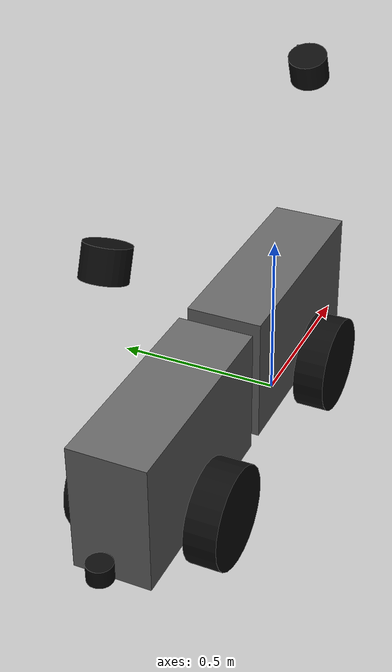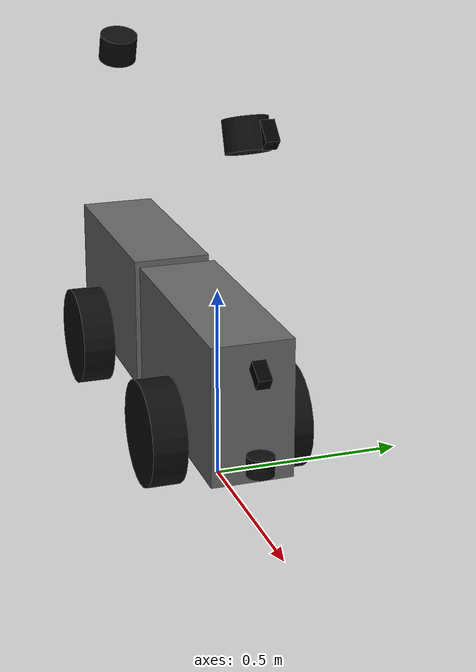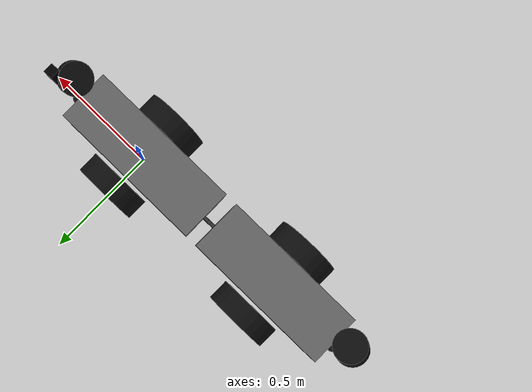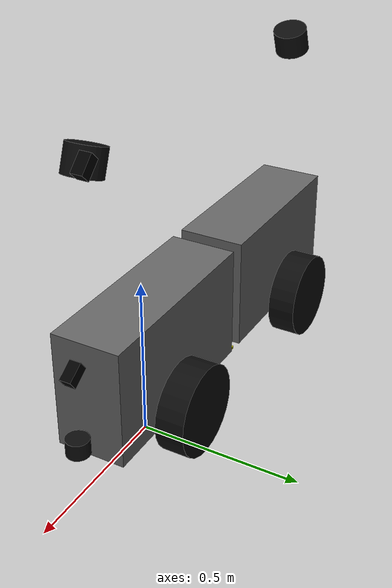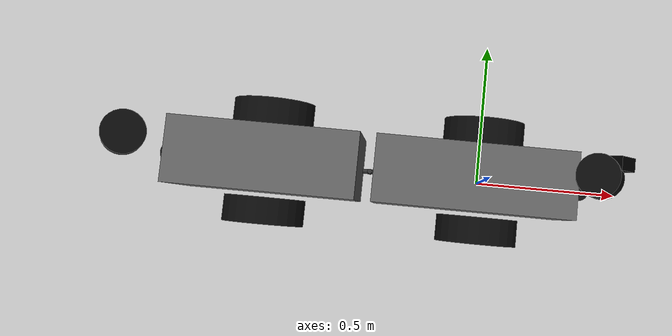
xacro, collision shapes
<?xml version="1.0" encoding="UTF-8"?>
<robot xmlns:xacro="http://www.ros.org/wiki/xacro" name="Floribot">

  <xacro:property name="height_wagon" value="0.363" />
  <xacro:property name="width_wagon" value="0.213" />
  <xacro:property name="length_wagon_front" value="0.635" />
  <xacro:property name="length_wagon_rear" value="0.605" />

  <xacro:property name="ghost_size" value="0.01" />
  <xacro:property name="base_2_front_wagon" value="0.04" />
  <xacro:property name="axesRear_2_rear_wagon" value="0.025" />

  <xacro:property name="wheel_radius" value="0.140" />
  <xacro:property name="wheel_thickness" value="0.09" />
  <xacro:property name="x_joint_wheel_front" value="0" />
  <xacro:property name="y_joint_wheel_front" value="0.167" />
  <xacro:property name="x_joint_wheel_back" value="0" />
  <xacro:property name="y_joint_wheel_back" value="0.167" />

  <xacro:property name="radius" value="0.008" />
  <xacro:property name="vertical_length" value="0.06" />
  <xacro:property name="horizontal_length" value="0.055" />
  <xacro:property name="wheel_joint_2_mid_joint" value="0.383" />

  <xacro:property name="sensor_z" value="0.03" />
  <xacro:property name="front_sensor_x" value="0.3315" />
  <xacro:property name="rear_sensor_x" value="-0.3315" />
  <xacro:property name="camera_z" value="0.263" />
  <xacro:property name="camera_angle" value="0.6" />
  <xacro:property name="pi" value="3.141592653589793" />

  <xacro:property name="camera_x_rear" value="0.275" />
  <xacro:property name="camera_y_rear" value="0.035" />
  <xacro:property name="camera_z_rear" value="0.825" />
  <xacro:property name="camera_angle_rear" value="0.785398" />

  <xacro:property name="imu_offset_x" value="0.0" />
  <xacro:property name="imu_offset_y" value="0.0" />
  <xacro:property name="imu_offset_z" value="0.27" />

  <xacro:property name="robosense_offset_x" value="0.225" />
  <xacro:property name="robosense_offset_y" value="0.0" />
  <xacro:property name="robosense_offset_z" value="0.815" />
  <xacro:property name="robosense_roll" value="${pi}" />
  <xacro:property name="robosense_pitch" value="-0.3490658503989" />
  <xacro:property name="robosense_yaw" value="0.0" />

  <xacro:property name="robosense_offset_rear_x" value="-0.225" />
  <xacro:property name="robosense_offset_rear_y" value="0.0" />
  <xacro:property name="robosense_offset_rear_z" value="0.815" />
  <xacro:property name="robosense_rear_roll" value="${pi}" />
  <xacro:property name="robosense_rear_pitch" value="-0.3490658503989" />
  <xacro:property name="robosense_rear_yaw" value="${pi}" />

  <xacro:property name="gps_offset_x" value="${imu_offset_x}" />
  <xacro:property name="gps_offset_y" value="${imu_offset_y}" />
  <xacro:property name="gps_offset_z" value="${imu_offset_z + 0.02}" />

  <xacro:property name="pan_tilt_offset_x" value="-0.23" />
  <xacro:property name="pan_tilt_offset_y" value="-0.03" />
  <xacro:property name="pan_tilt_offset_z" value="0.0" />

  <link name="base_footprint"/>

  <link name="base_link">
    <visual>
      <origin xyz="0 0 ${ghost_size}" rpy="0 0 0"/>
      <geometry>
        <box size="${ghost_size} ${ghost_size} ${ghost_size}"/>
      </geometry>
      <material name="base_mat">
        <color rgba="0.0 0.8 0.8 1.0"/>
      </material>
    </visual>
  </link>

  <joint name="base_footprint_joint" type="fixed">
    <parent link="base_footprint"/>
    <child link="base_link"/>
    <origin xyz="0 0 ${wheel_radius}" rpy="0 0 0"/>
  </joint>

  <link name="axesFront"/>

  <joint name="base_link_2_axesFront" type="fixed">
    <parent link="base_link"/>
    <child link="axesFront"/>
    <origin xyz="0 0 0"/>
  </joint>

  <joint name="j_base_2_front_wagon" type="fixed">
    <parent link="base_link"/>
    <child link="front_wagon"/>
    <origin xyz="${-base_2_front_wagon} 0 0"/>
  </joint>

  <link name="front_wagon">
    <visual>
      <origin xyz="-${length_wagon_front/2+0.0255} 0 -${wheel_radius}" rpy="0 0 0"/>
      <geometry>
        <mesh filename="file:///ws/src/floribot_gz_description/meshes/Vorderwagen.stl" scale="0.001 0.001 0.001"/>
      </geometry>
      <material name="front_wagon_mat">
        <color rgba="0.4 0.4 0.4 1.0"/>
      </material>
    </visual>
    <collision>
      <origin xyz="0 0 ${wheel_radius}" rpy="0 0 0"/>
      <geometry>
        <box size="${length_wagon_front} ${width_wagon} ${height_wagon}"/>
      </geometry>
    </collision>
    <inertial>
      <origin xyz="0 0 ${wheel_radius}" rpy="0 0 0"/>
      <mass value="31"/>
      <inertia ixx="0.3853" ixy="0.0001197" ixz="-0.0128" iyy="1.0" iyz="0.0000149" izz="0.8678"/>
    </inertial>
  </link>

  <link name="jointFront">
    <visual>
      <geometry>
        <cylinder length="${vertical_length}" radius="${radius}"/>
      </geometry>
      <material name="joint_mat">
        <color rgba="0.2 0.2 0.2 1.0"/>
      </material>
    </visual>
    <collision>
      <geometry>
        <cylinder length="${vertical_length}" radius="${radius}"/>
      </geometry>
    </collision>
    <inertial>
      <mass value="0.01"/>
      <inertia ixx="0.000004" ixy="0.0" ixz="0.0" iyy="0.000004" iyz="0.0" izz="0.000004"/>
    </inertial>
  </link>

  <joint name="body_angle_roll" type="fixed">
    <axis xyz="1 0 0"/>
    <limit effort="1.0" lower="-1.57" upper="1.57" velocity="0.5"/>
    <parent link="axesFront"/>
    <child link="jointFront"/>
    <origin xyz="${-wheel_joint_2_mid_joint} 0 0"/>
  </joint>

  <link name="jointRear">
    <visual>
      <origin xyz="0 0 0" rpy="0 1.57 0"/>
      <geometry>
        <cylinder length="${horizontal_length}" radius="${radius}"/>
      </geometry>
      <material name="joint_rear_mat">
        <color rgba="0.2 0.2 0.2 1.0"/>
      </material>
    </visual>
    <collision>
      <origin xyz="0 0 0" rpy="0 1.57 0"/>
      <geometry>
        <cylinder length="${horizontal_length}" radius="${radius}"/>
      </geometry>
    </collision>
    <inertial>
      <mass value="0.01"/>
      <inertia ixx="0.000004" ixy="0.0" ixz="0.0" iyy="0.000004" iyz="0.0" izz="0.000004"/>
    </inertial>
  </link>

  <joint name="body_angle" type="revolute">
    <axis xyz="0 0 1"/>
    <limit effort="1.0" lower="-1.57" upper="1.57" velocity="0.5"/>
    <parent link="jointFront"/>
    <child link="jointRear"/>
    <origin xyz="0 0 0"/>
  </joint>

  <link name="axesRear">
    <visual>
      <origin xyz="0 0 ${wheel_radius}" rpy="0 0 0"/>
      <geometry>
        <box size="${ghost_size} ${ghost_size} ${ghost_size}"/>
      </geometry>
      <material name="rear_axis_mat">
        <color rgba="0 0 0.8 1.0"/>
      </material>
    </visual>
    <collision>
      <origin xyz="0 0 ${wheel_radius}" rpy="0 0 0"/>
      <geometry>
        <box size="${ghost_size} ${ghost_size} ${ghost_size}"/>
      </geometry>
    </collision>
    <inertial>
      <origin xyz="0 0 ${wheel_radius}" rpy="0 0 0"/>
      <mass value="0.001"/>
      <inertia ixx="1.369982" ixy="0.0" ixz="0.0" iyy="0.487502" iyz="0.0" izz="1.132200"/>
    </inertial>
  </link>

  <joint name="j_jointRear_rear_wagon" type="fixed">
    <parent link="jointRear"/>
    <child link="axesRear"/>
    <origin xyz="${-wheel_joint_2_mid_joint + vertical_length/2} 0 0"/>
  </joint>

  <link name="axesRear_footprint">
    <visual>
      <origin xyz="0 0 0" rpy="0 0 0"/>
      <geometry>
        <box size="${ghost_size} ${ghost_size} ${ghost_size}"/>
      </geometry>
      <material name="axes_rear_footprint_mat">
        <color rgba="0.8 0 0.8 1.0"/>
      </material>
    </visual>
    <collision>
      <origin xyz="0 0 0" rpy="0 0 0"/>
      <geometry>
        <box size="${ghost_size} ${ghost_size} ${ghost_size}"/>
      </geometry>
    </collision>
    <inertial>
      <origin xyz="0 0 0" rpy="0 0 0"/>
      <mass value="0.001"/>
      <inertia ixx="1.369982" ixy="0.0" ixz="0.0" iyy="0.487502" iyz="0.0" izz="1.132200"/>
    </inertial>
  </link>

  <joint name="j_axesRear_2_axesRear_footprint" type="fixed">
    <parent link="axesRear"/>
    <child link="axesRear_footprint"/>
    <origin xyz="0.0 0.0 -${wheel_radius}" rpy="0 0 ${pi}"/>
  </joint>

  <link name="pan_tilt_link_footprint">
    <visual>
      <origin xyz="0 0 0" rpy="0 0 0"/>
      <geometry>
        <box size="${ghost_size} ${ghost_size} ${ghost_size}"/>
      </geometry>
      <material name="pan_tilt_footprint_mat">
        <color rgba="0.8 0.8 0 1.0"/>
      </material>
    </visual>
    <collision>
      <origin xyz="0 0 0" rpy="0 0 0"/>
      <geometry>
        <box size="${ghost_size} ${ghost_size} ${ghost_size}"/>
      </geometry>
    </collision>
    <inertial>
      <origin xyz="0 0 0" rpy="0 0 0"/>
      <mass value="0.001"/>
      <inertia ixx="0.000001" ixy="0.0" ixz="0.0" iyy="0.000001" iyz="0.0" izz="0.000001"/>
    </inertial>
  </link>

  <joint name="pan_tilt_link_footprint_joint" type="fixed">
    <parent link="axesRear_footprint"/>
    <child link="pan_tilt_link_footprint"/>
    <origin xyz="${pan_tilt_offset_x} ${pan_tilt_offset_y} ${pan_tilt_offset_z}" rpy="0 0 ${pi}"/>
  </joint>

  <joint name="j_axesRear_2_rear_wagon" type="fixed">
    <parent link="axesRear"/>
    <child link="rear_wagon"/>
    <origin xyz="${axesRear_2_rear_wagon} 0 0"/>
  </joint>

  <link name="rear_wagon">
    <visual>
      <origin xyz="${length_wagon_rear/2+0.056} 0 -${wheel_radius}" rpy="0 0 0"/>
      <geometry>
        <mesh filename="file:///ws/src/floribot_gz_description/meshes/Hinterwagen.stl" scale="0.001 0.001 0.001"/>
      </geometry>
      <material name="rear_wagon_mat">
        <color rgba="0.4 0.4 0.4 1.0"/>
      </material>
    </visual>
    <collision>
      <origin xyz="0 0 ${wheel_radius}" rpy="0 0 0"/>
      <geometry>
        <box size="${length_wagon_rear} ${width_wagon} ${height_wagon}"/>
      </geometry>
    </collision>
    <inertial>
      <origin xyz="0 0 ${wheel_radius}" rpy="0 0 0"/>
      <mass value="33"/>
      <inertia ixx="0.4137" ixy="0.00027" ixz="0.007359" iyy="1.047" iyz="0.0001775" izz="0.9021"/>
    </inertial>
  </link>

  <link name="frontLeft">
    <visual>
      <origin xyz="0 -${wheel_thickness/2-0.0095} 0" rpy="1.57 0 0"/>
      <geometry>
        <mesh filename="file:///ws/src/floribot_gz_description/meshes/Reifen.stl" scale="0.001 0.001 0.001"/>
      </geometry>
      <material name="wheel_mat">
        <color rgba="0.05 0.05 0.05 1.0"/>
      </material>
    </visual>
    <collision>
      <origin xyz="0 0 0" rpy="1.57 0 0"/>
      <geometry>
        <cylinder length="${wheel_thickness}" radius="${wheel_radius}"/>
      </geometry>
    </collision>
    <inertial>
      <mass value="2.4"/>
      <inertia ixx="0.014" ixy="0.0" ixz="0.0" iyy="0.026" iyz="0.0" izz="0.014"/>
    </inertial>
  </link>

  <joint name="joint_frontLeft" type="continuous">
    <parent link="axesFront"/>
    <child link="frontLeft"/>
    <axis xyz="0 1 0"/>
    <origin xyz="${x_joint_wheel_front} ${y_joint_wheel_front} 0"/>
  </joint>

  <link name="frontRight">
    <visual>
      <origin xyz="0 ${wheel_thickness/2-0.0095} 0" rpy="1.57 0 0"/>
      <geometry>
        <mesh filename="file:///ws/src/floribot_gz_description/meshes/Reifen.stl" scale="0.001 0.001 0.001"/>
      </geometry>
      <material name="wheel_mat">
        <color rgba="0.05 0.05 0.05 1.0"/>
      </material>
    </visual>
    <collision>
      <origin xyz="0 0 0" rpy="1.57 0 0"/>
      <geometry>
        <cylinder length="${wheel_thickness}" radius="${wheel_radius}"/>
      </geometry>
    </collision>
    <inertial>
      <mass value="2.4"/>
      <inertia ixx="0.014" ixy="0.0" ixz="0.0" iyy="0.026" iyz="0.0" izz="0.014"/>
    </inertial>
  </link>

  <joint name="joint_frontRight" type="continuous">
    <parent link="axesFront"/>
    <child link="frontRight"/>
    <axis xyz="0 1 0"/>
    <origin xyz="${x_joint_wheel_front} -${y_joint_wheel_front} 0"/>
  </joint>

  <link name="rearLeft">
    <visual>
      <origin xyz="0 -${wheel_thickness/2-0.0095} 0" rpy="1.57 0 0"/>
      <geometry>
        <mesh filename="file:///ws/src/floribot_gz_description/meshes/Reifen.stl" scale="0.001 0.001 0.001"/>
      </geometry>
      <material name="wheel_mat">
        <color rgba="0.05 0.05 0.05 1.0"/>
      </material>
    </visual>
    <collision>
      <origin xyz="0 0 0" rpy="1.57 0 0"/>
      <geometry>
        <cylinder length="${wheel_thickness}" radius="${wheel_radius}"/>
      </geometry>
    </collision>
    <inertial>
      <mass value="2.4"/>
      <inertia ixx="0.014" ixy="0.0" ixz="0.0" iyy="0.026" iyz="0.0" izz="0.014"/>
    </inertial>
  </link>

  <joint name="joint_rearLeft" type="continuous">
    <parent link="axesRear"/>
    <child link="rearLeft"/>
    <axis xyz="0 1 0"/>
    <origin xyz="${x_joint_wheel_back} ${y_joint_wheel_back} 0"/>
  </joint>

  <link name="rearRight">
    <visual>
      <origin xyz="0 ${wheel_thickness/2-0.0095} 0" rpy="1.57 0 0"/>
      <geometry>
        <mesh filename="file:///ws/src/floribot_gz_description/meshes/Reifen.stl" scale="0.001 0.001 0.001"/>
      </geometry>
      <material name="wheel_mat">
        <color rgba="0.05 0.05 0.05 1.0"/>
      </material>
    </visual>
    <collision>
      <origin xyz="0 0 0" rpy="1.57 0 0"/>
      <geometry>
        <cylinder length="${wheel_thickness}" radius="${wheel_radius}"/>
      </geometry>
    </collision>
    <inertial>
      <mass value="2.4"/>
      <inertia ixx="0.014" ixy="0.0" ixz="0.0" iyy="0.026" iyz="0.0" izz="0.014"/>
    </inertial>
  </link>

  <joint name="joint_rearRight" type="continuous">
    <parent link="axesRear"/>
    <child link="rearRight"/>
    <axis xyz="0 1 0"/>
    <origin xyz="${x_joint_wheel_back} -${y_joint_wheel_back} 0"/>
  </joint>

  <link name="sick_front_link">
    <visual>
      <origin xyz="0 0 0" rpy="0 0 0"/>
      <geometry>
        <cylinder length="0.05" radius="0.035"/>
      </geometry>
      <material name="front_laser_mat">
        <color rgba="0.05 0.05 0.05 1.0"/>
      </material>
    </visual>
    <collision>
      <origin xyz="0 0 0" rpy="0 0 0"/>
      <geometry>
        <cylinder length="0.05" radius="0.035"/>
      </geometry>
    </collision>
    <inertial>
      <mass value="0.2"/>
      <inertia ixx="0.0001" ixy="0.0" ixz="0.0" iyy="0.0001" iyz="0.0" izz="0.0001"/>
    </inertial>
  </link>

  <joint name="front_laser_joint" type="fixed">
    <parent link="axesFront"/>
    <child link="sick_front_link"/>
    <origin xyz="${front_sensor_x} 0 ${sensor_z}" rpy="${pi} 0 0"/>
  </joint>

  <link name="sick_rear_link">
    <visual>
      <origin xyz="0 0 0" rpy="0 0 0"/>
      <geometry>
        <cylinder length="0.05" radius="0.035"/>
      </geometry>
      <material name="rear_laser_mat">
        <color rgba="0.05 0.05 0.05 1.0"/>
      </material>
    </visual>
    <collision>
      <origin xyz="0 0 0" rpy="0 0 0"/>
      <geometry>
        <cylinder length="0.05" radius="0.035"/>
      </geometry>
    </collision>
    <inertial>
      <mass value="0.2"/>
      <inertia ixx="0.0001" ixy="0.0" ixz="0.0" iyy="0.0001" iyz="0.0" izz="0.0001"/>
    </inertial>
  </link>

  <joint name="rear_laser_joint" type="fixed">
    <parent link="axesRear"/>
    <child link="sick_rear_link"/>
    <origin xyz="${rear_sensor_x} 0 ${sensor_z}" rpy="${pi} 0 ${pi}"/>
  </joint>

  <link name="realsense_front_link">
    <visual>
      <origin xyz="0 0 0" rpy="0 0 0"/>
      <geometry>
        <box size="0.06 0.035 0.035"/>
      </geometry>
      <material name="front_camera_mat">
        <color rgba="0.0 0.0 0.0 1.0"/>
      </material>
    </visual>
    <collision>
      <origin xyz="0 0 0" rpy="0 0 0"/>
      <geometry>
        <box size="0.06 0.035 0.035"/>
      </geometry>
    </collision>
    <inertial>
      <mass value="0.1"/>
      <inertia ixx="0.00005" ixy="0.0" ixz="0.0" iyy="0.00005" iyz="0.0" izz="0.00005"/>
    </inertial>
  </link>

  <joint name="front_camera_joint" type="fixed">
    <parent link="base_link"/>
    <child link="realsense_front_link"/>
    <origin xyz="${front_sensor_x} 0 ${camera_z}" rpy="0 ${camera_angle} 0"/>
  </joint>

  <link name="realsense_rear_link">  <!-- als REalsense oben deklariert -->
    <visual>
      <origin xyz="0 0 0" rpy="0 0 0"/>
      <geometry>
        <box size="0.06 0.035 0.035"/>
      </geometry>
      <material name="rear_camera_mat">
        <color rgba="0.0 0.0 0.0 1.0"/>
      </material>
    </visual>
    <collision>
      <origin xyz="0 0 0" rpy="0 0 0"/>
      <geometry>
        <box size="0.06 0.035 0.035"/>
      </geometry>
    </collision>
    <inertial>
      <mass value="0.1"/>
      <inertia ixx="0.00005" ixy="0.0" ixz="0.0" iyy="0.00005" iyz="0.0" izz="0.00005"/>
    </inertial>
  </link>

  <joint name="rear_camera_joint" type="fixed">
    <parent link="base_link"/>
    <child link="realsense_rear_link"/>
    <origin xyz="${camera_x_rear} ${camera_y_rear} ${camera_z_rear}" rpy="0 ${camera_angle_rear} 0"/>
  </joint>

  <link name="robosense_front_link">
    <visual>
      <origin xyz="0 0 0" rpy="0 0 0"/>
      <geometry>
        <cylinder length="0.08" radius="0.055"/>
      </geometry>
      <material name="robosense_mat">
        <color rgba="0.05 0.05 0.05 1.0"/>
      </material>
    </visual>
    <collision>
      <origin xyz="0 0 0" rpy="0 0 0"/>
      <geometry>
        <cylinder length="0.08" radius="0.055"/>
      </geometry>
    </collision>
    <inertial>
      <mass value="0.5"/>
      <inertia ixx="0.0005" ixy="0.0" ixz="0.0" iyy="0.0005" iyz="0.0" izz="0.0005"/>
    </inertial>
  </link>

  <joint name="robosense_front_joint" type="fixed">
    <parent link="base_link"/>
    <child link="robosense_front_link"/>
    <origin xyz="${robosense_offset_x} ${robosense_offset_y} ${robosense_offset_z}" rpy="${robosense_roll} ${robosense_pitch} ${robosense_yaw}"/>
  </joint>

  <link name="robosense_rear_link">
    <visual>
      <origin xyz="0 0 0" rpy="0 0 0"/>
      <geometry>
        <cylinder length="0.08" radius="0.055"/>
      </geometry>
      <material name="robosense_mat">
        <color rgba="0.05 0.05 0.05 1.0"/>
      </material>
    </visual>
    <collision>
      <origin xyz="0 0 0" rpy="0 0 0"/>
      <geometry>
        <cylinder length="0.08" radius="0.055"/>
      </geometry>
    </collision>
    <inertial>
      <mass value="0.5"/>
      <inertia ixx="0.0005" ixy="0.0" ixz="0.0" iyy="0.0005" iyz="0.0" izz="0.0005"/>
    </inertial>
  </link>

  <joint name="robosense_rear_joint" type="fixed">
    <parent link="axesRear"/>
    <child link="robosense_rear_link"/>
    <origin xyz="${robosense_offset_rear_x} ${robosense_offset_rear_y} ${robosense_offset_rear_z}" rpy="${robosense_rear_roll} ${robosense_rear_pitch} ${robosense_rear_yaw}"/>
  </joint>

  <link name="xsens_mti_link"> <!-- Link for IMU Sensor -->
    <visual>
      <geometry>
        <box size="0.039 0.042 0.028"/>
      </geometry>
      <material name="imu_mat">
        <color rgba="1.0 0.0 0.0 1.0"/>
      </material>
    </visual>
    <inertial>
      <mass value="0.01"/>
      <inertia ixx="0.000001" ixy="0.0" ixz="0.0" iyy="0.000001" iyz="0.0" izz="0.000001"/>
    </inertial>
  </link>

  <joint name="imu_joint" type="fixed">
    <parent link="base_link"/>
    <child link="xsens_mti_link"/>
    <origin xyz="${imu_offset_x} ${imu_offset_y} ${imu_offset_z}" rpy="${pi} 0 0"/>
  </joint>

  <link name="gps_link">
    <visual>
      <origin xyz="-0.06 0 0" rpy="0 0 0"/>
      <geometry>
        <cylinder length="0.035" radius="0.045"/>
      </geometry>
      <material name="gps_mat">
        <color rgba="0.0 0.2 1.0 1.0"/>
      </material>
    </visual>

    <collision>
      <origin xyz="0 0 0" rpy="0 0 0"/>
      <geometry>
        <cylinder length="0.035" radius="0.045"/>
      </geometry>
    </collision>

    <inertial>
      <mass value="0.05"/>
      <inertia
        ixx="0.00001" ixy="0.0" ixz="0.0"
        iyy="0.00001" iyz="0.0"
        izz="0.00001"/>
    </inertial>
  </link>

  <joint name="gps_joint" type="fixed">
    <parent link="base_link"/>
    <child link="gps_link"/>
    <origin xyz="${gps_offset_x} ${gps_offset_y} ${gps_offset_z}" rpy="0 0 0"/>
  </joint>
</robot>
